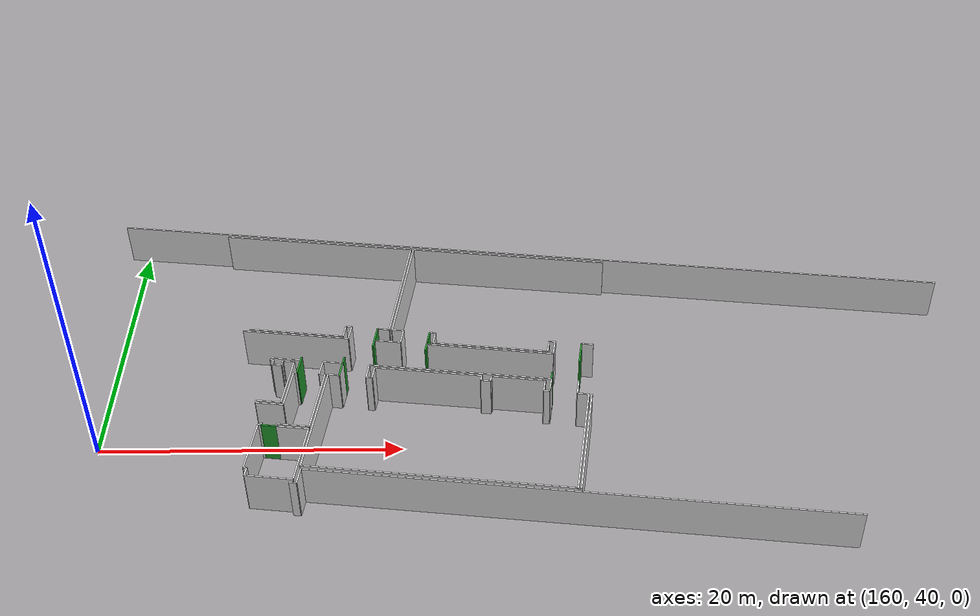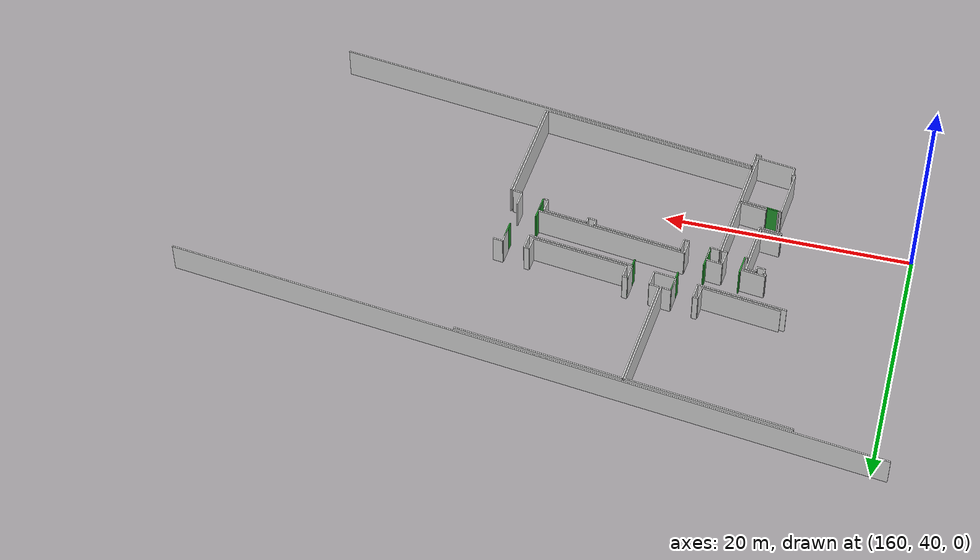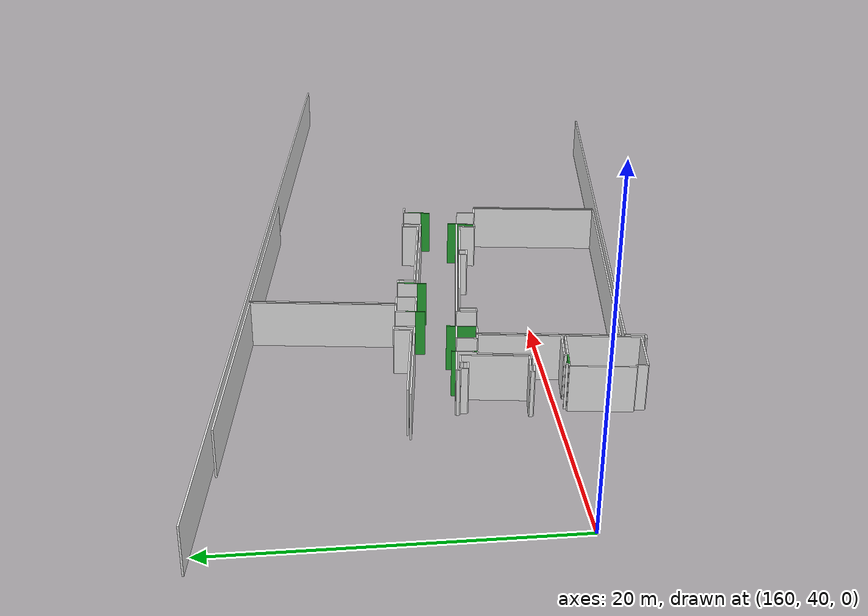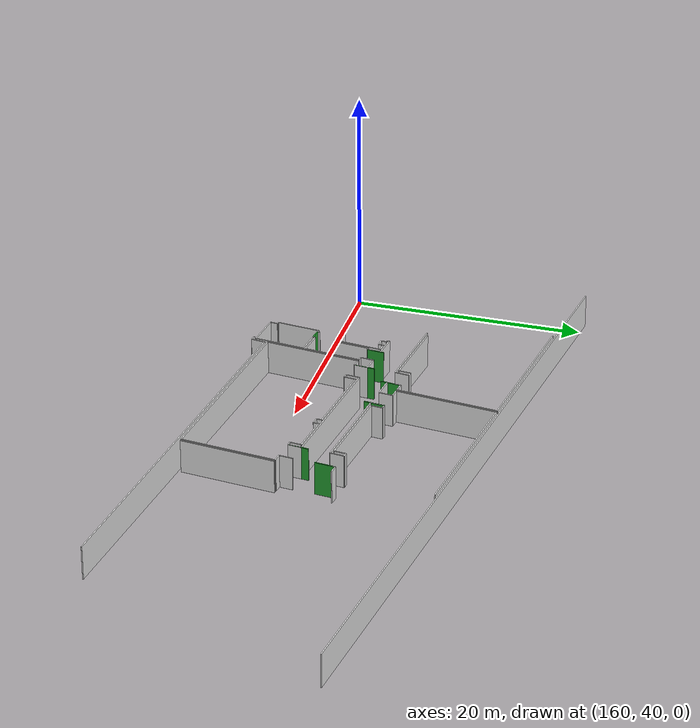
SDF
<sdf version="1.6">
 <world name="default">
  <model name="wall_191.8_46.1_1.5">
   <static>true</static>
   <pose>191.76500000001397 46.06499999994412 1.5 0 0 -1.6875809222415865</pose>
   <link name="link">
    <visual name="visual">
     <geometry><box><size>1.8022763384447233 0.1 3</size></box></geometry>
     <material>
      <script><uri>file://media/materials/scripts/gazebo.material</uri><name>Gazebo/Green</name></script>
     </material>
    </visual>
    <collision name="collision"><geometry><box><size>1.8022763384447233 0.1 3</size></box></geometry></collision>
   </link>
  </model>
  <model name="wall_181.4_47.3_1.5">
   <static>true</static>
   <pose>181.42000000015832 47.30500000016764 1.5 0 0 -1.693088050395822</pose>
   <link name="link">
    <visual name="visual">
     <geometry><box><size>1.8034688796923075 0.1 3</size></box></geometry>
     <material>
      <script><uri>file://media/materials/scripts/gazebo.material</uri><name>Gazebo/Green</name></script>
     </material>
    </visual>
    <collision name="collision"><geometry><box><size>1.8034688796923075 0.1 3</size></box></geometry></collision>
   </link>
  </model>
  <model name="wall_175.8_44.9_1.5">
   <static>true</static>
   <pose>175.80500000022585 44.86500000022352 1.5 0 0 1.4540117310915928</pose>
   <link name="link">
    <visual name="visual">
     <geometry><box><size>1.802276338498982 0.1 3</size></box></geometry>
     <material>
      <script><uri>file://media/materials/scripts/gazebo.material</uri><name>Gazebo/Green</name></script>
     </material>
    </visual>
    <collision name="collision"><geometry><box><size>1.802276338498982 0.1 3</size></box></geometry></collision>
   </link>
  </model>
  <model name="wall_189.7_43.2_1.5">
   <static>true</static>
   <pose>189.70999999984633 43.1999999997206 1.5 0 0 1.4491773036638287</pose>
   <link name="link">
    <visual name="visual">
     <geometry><box><size>1.8133946065913809 0.1 3</size></box></geometry>
     <material>
      <script><uri>file://media/materials/scripts/gazebo.material</uri><name>Gazebo/Green</name></script>
     </material>
    </visual>
    <collision name="collision"><geometry><box><size>1.8133946065913809 0.1 3</size></box></geometry></collision>
   </link>
  </model>
  <model name="wall_177.8_47.7_1.5">
   <static>true</static>
   <pose>177.8499999999185 47.734999999869615 1.5 0 0 -1.6930880506520969</pose>
   <link name="link">
    <visual name="visual">
     <geometry><box><size>1.803468879749112 0.1 3</size></box></geometry>
     <material>
      <script><uri>file://media/materials/scripts/gazebo.material</uri><name>Gazebo/Green</name></script>
     </material>
    </visual>
    <collision name="collision"><geometry><box><size>1.803468879749112 0.1 3</size></box></geometry></collision>
   </link>
  </model>
  <model name="wall_173.0_45.1_1.5">
   <static>true</static>
   <pose>172.96000000007916 45.05499999993481 1.5 0 0 1.4505735400033473</pose>
   <link name="link">
    <visual name="visual">
     <geometry><box><size>1.5008331017600727 0.1 3</size></box></geometry>
     <material>
      <script><uri>file://media/materials/scripts/gazebo.material</uri><name>Gazebo/Green</name></script>
     </material>
    </visual>
    <collision name="collision"><geometry><box><size>1.5008331017600727 0.1 3</size></box></geometry></collision>
   </link>
  </model>
  <model name="wall_171.6_39.3_1.5">
   <static>true</static>
   <pose>171.56500000000233 39.300000000046566 1.5 0 0 -0.12062366822892527</pose>
   <link name="link">
    <visual name="visual">
     <geometry><box><size>0.9972462082638486 0.1 3</size></box></geometry>
     <material>
      <script><uri>file://media/materials/scripts/gazebo.material</uri><name>Gazebo/Green</name></script>
     </material>
    </visual>
    <collision name="collision"><geometry><box><size>0.9972462082638486 0.1 3</size></box></geometry></collision>
   </link>
  </model>
  <model name="wall_192.3_46.9_1.5">
   <static>true</static>
   <pose>192.26999999998952 46.90999999991618 1.5 0 0 3.0172376589266166</pose>
   <link name="link">
    <visual name="visual">
     <geometry><box><size>0.806225774829855 0.1 3</size></box></geometry>
     <material>
      <script><uri>file://media/materials/scripts/gazebo.material</uri><name>Gazebo/White</name></script>
     </material>
    </visual>
    <collision name="collision"><geometry><box><size>0.806225774829855 0.1 3</size></box></geometry></collision>
   </link>
  </model>
  <model name="wall_189.9_47.2_1.5">
   <static>true</static>
   <pose>189.88000000000466 47.19500000006519 1.5 0 0 3.01723765836245</pose>
   <link name="link">
    <visual name="visual">
     <geometry><box><size>0.4031128874726857 0.1 3</size></box></geometry>
     <material>
      <script><uri>file://media/materials/scripts/gazebo.material</uri><name>Gazebo/White</name></script>
     </material>
    </visual>
    <collision name="collision"><geometry><box><size>0.4031128874726857 0.1 3</size></box></geometry></collision>
   </link>
  </model>
  <model name="wall_189.6_46.7_1.5">
   <static>true</static>
   <pose>189.6149999999907 46.71000000019558 1.5 0 0 -1.6975638618984608</pose>
   <link name="link">
    <visual name="visual">
     <geometry><box><size>1.028250942153329 0.1 3</size></box></geometry>
     <material>
      <script><uri>file://media/materials/scripts/gazebo.material</uri><name>Gazebo/White</name></script>
     </material>
    </visual>
    <collision name="collision"><geometry><box><size>1.028250942153329 0.1 3</size></box></geometry></collision>
   </link>
  </model>
  <model name="wall_185.7_46.7_1.5">
   <static>true</static>
   <pose>185.67999999999302 46.66500000003725 1.5 0 0 3.0220108925195217</pose>
   <link name="link">
    <visual name="visual">
     <geometry><box><size>7.79567187606697 0.1 3</size></box></geometry>
     <material>
      <script><uri>file://media/materials/scripts/gazebo.material</uri><name>Gazebo/White</name></script>
     </material>
    </visual>
    <collision name="collision"><geometry><box><size>7.79567187606697 0.1 3</size></box></geometry></collision>
   </link>
  </model>
  <model name="wall_181.9_47.6_1.5">
   <static>true</static>
   <pose>181.86999999999534 47.639999999897555 1.5 0 0 1.4536875822346544</pose>
   <link name="link">
    <visual name="visual">
     <geometry><box><size>1.0270345661353761 0.1 3</size></box></geometry>
     <material>
      <script><uri>file://media/materials/scripts/gazebo.material</uri><name>Gazebo/White</name></script>
     </material>
    </visual>
    <collision name="collision"><geometry><box><size>1.0270345661353761 0.1 3</size></box></geometry></collision>
   </link>
  </model>
  <model name="wall_181.7_48.2_1.5">
   <static>true</static>
   <pose>181.73000000001048 48.175000000046566 1.5 0 0 3.01723765834454</pose>
   <link name="link">
    <visual name="visual">
     <geometry><box><size>0.4031128874149275 0.1 3</size></box></geometry>
     <material>
      <script><uri>file://media/materials/scripts/gazebo.material</uri><name>Gazebo/White</name></script>
     </material>
    </visual>
    <collision name="collision"><geometry><box><size>0.4031128874149275 0.1 3</size></box></geometry></collision>
   </link>
  </model>
  <model name="wall_179.4_48.5_1.5">
   <static>true</static>
   <pose>179.35000000000582 48.46499999985099 1.5 0 0 3.026716048357006</pose>
   <link name="link">
    <visual name="visual">
     <geometry><box><size>0.7851751396509952 0.1 3</size></box></geometry>
     <material>
      <script><uri>file://media/materials/scripts/gazebo.material</uri><name>Gazebo/White</name></script>
     </material>
    </visual>
    <collision name="collision"><geometry><box><size>0.7851751396509952 0.1 3</size></box></geometry></collision>
   </link>
  </model>
  <model name="wall_179.5_52.9_1.5">
   <static>true</static>
   <pose>179.49500000002445 52.949999999953434 1.5 0 0 1.4508789678012857</pose>
   <link name="link">
    <visual name="visual">
     <geometry><box><size>8.944232779076149 0.1 3</size></box></geometry>
     <material>
      <script><uri>file://media/materials/scripts/gazebo.material</uri><name>Gazebo/White</name></script>
     </material>
    </visual>
    <collision name="collision"><geometry><box><size>8.944232779076149 0.1 3</size></box></geometry></collision>
   </link>
  </model>
  <model name="wall_186.9_56.6_1.5">
   <static>true</static>
   <pose>186.89000000001397 56.56000000005588 1.5 0 0 -0.12040599336592878</pose>
   <link name="link">
    <visual name="visual">
     <geometry><box><size>13.820057886989042 0.1 3</size></box></geometry>
     <material>
      <script><uri>file://media/materials/scripts/gazebo.material</uri><name>Gazebo/White</name></script>
     </material>
    </visual>
    <collision name="collision"><geometry><box><size>13.820057886989042 0.1 3</size></box></geometry></collision>
   </link>
  </model>
  <model name="wall_191.5_42.7_1.5">
   <static>true</static>
   <pose>191.47000000000116 42.675000000046566 1.5 0 0 -1.6879050713305428</pose>
   <link name="link">
    <visual name="visual">
     <geometry><box><size>1.1982069937429929 0.1 3</size></box></geometry>
     <material>
      <script><uri>file://media/materials/scripts/gazebo.material</uri><name>Gazebo/White</name></script>
     </material>
    </visual>
    <collision name="collision"><geometry><box><size>1.1982069937429929 0.1 3</size></box></geometry></collision>
   </link>
  </model>
  <model name="wall_189.7_42.9_1.5">
   <static>true</static>
   <pose>189.67499999998836 42.89500000001863 1.5 0 0 1.445407206476848</pose>
   <link name="link">
    <visual name="visual">
     <geometry><box><size>1.199416525224772 0.1 3</size></box></geometry>
     <material>
      <script><uri>file://media/materials/scripts/gazebo.material</uri><name>Gazebo/White</name></script>
     </material>
    </visual>
    <collision name="collision"><geometry><box><size>1.199416525224772 0.1 3</size></box></geometry></collision>
   </link>
  </model>
  <model name="wall_183.7_44.2_1.5">
   <static>true</static>
   <pose>183.69000000000233 44.22000000020489 1.5 0 0 3.021708265311705</pose>
   <link name="link">
    <visual name="visual">
     <geometry><box><size>12.207620570765556 0.1 3</size></box></geometry>
     <material>
      <script><uri>file://media/materials/scripts/gazebo.material</uri><name>Gazebo/White</name></script>
     </material>
    </visual>
    <collision name="collision"><geometry><box><size>12.207620570765556 0.1 3</size></box></geometry></collision>
   </link>
  </model>
  <model name="wall_177.6_44.4_1.5">
   <static>true</static>
   <pose>177.55999999999767 44.35499999998137 1.5 0 0 -1.6879050713333807</pose>
   <link name="link">
    <visual name="visual">
     <geometry><box><size>1.1982069942122657 0.1 3</size></box></geometry>
     <material>
      <script><uri>file://media/materials/scripts/gazebo.material</uri><name>Gazebo/White</name></script>
     </material>
    </visual>
    <collision name="collision"><geometry><box><size>1.1982069942122657 0.1 3</size></box></geometry></collision>
   </link>
  </model>
  <model name="wall_175.8_44.6_1.5">
   <static>true</static>
   <pose>175.77499999999418 44.56500000017695 1.5 0 0 1.4454072064764434</pose>
   <link name="link">
    <visual name="visual">
     <geometry><box><size>1.199416524755487 0.1 3</size></box></geometry>
     <material>
      <script><uri>file://media/materials/scripts/gazebo.material</uri><name>Gazebo/White</name></script>
     </material>
    </visual>
    <collision name="collision"><geometry><box><size>1.199416524755487 0.1 3</size></box></geometry></collision>
   </link>
  </model>
  <model name="wall_175.2_45.2_1.5">
   <static>true</static>
   <pose>175.17999999999302 45.23999999999069 1.5 0 0 3.0227523092521484</pose>
   <link name="link">
    <visual name="visual">
     <geometry><box><size>1.3495184325570784 0.1 3</size></box></geometry>
     <material>
      <script><uri>file://media/materials/scripts/gazebo.material</uri><name>Gazebo/White</name></script>
     </material>
    </visual>
    <collision name="collision"><geometry><box><size>1.3495184325570784 0.1 3</size></box></geometry></collision>
   </link>
  </model>
  <model name="wall_174.4_44.7_1.5">
   <static>true</static>
   <pose>174.43499999999767 44.7249999998603 1.5 0 0 -1.696185447161499</pose>
   <link name="link">
    <visual name="visual">
     <geometry><box><size>1.1994165247627664 0.1 3</size></box></geometry>
     <material>
      <script><uri>file://media/materials/scripts/gazebo.material</uri><name>Gazebo/White</name></script>
     </material>
    </visual>
    <collision name="collision"><geometry><box><size>1.1994165247627664 0.1 3</size></box></geometry></collision>
   </link>
  </model>
  <model name="wall_172.9_44.9_1.5">
   <static>true</static>
   <pose>172.94000000000233 44.90500000002794 1.5 0 0 1.4536875822110042</pose>
   <link name="link">
    <visual name="visual">
     <geometry><box><size>1.198206993749794 0.1 3</size></box></geometry>
     <material>
      <script><uri>file://media/materials/scripts/gazebo.material</uri><name>Gazebo/White</name></script>
     </material>
    </visual>
    <collision name="collision"><geometry><box><size>1.198206993749794 0.1 3</size></box></geometry></collision>
   </link>
  </model>
  <model name="wall_172.0_45.6_1.5">
   <static>true</static>
   <pose>172.0100000000093 45.62000000011176 1.5 0 0 3.0221637274612827</pose>
   <link name="link">
    <visual name="visual">
     <geometry><box><size>2.0143485299488986 0.1 3</size></box></geometry>
     <material>
      <script><uri>file://media/materials/scripts/gazebo.material</uri><name>Gazebo/White</name></script>
     </material>
    </visual>
    <collision name="collision"><geometry><box><size>2.0143485299488986 0.1 3</size></box></geometry></collision>
   </link>
  </model>
  <model name="wall_171.0_45.6_1.5">
   <static>true</static>
   <pose>170.99499999999534 45.64500000001863 1.5 0 0 -1.7273982035881303</pose>
   <link name="link">
    <visual name="visual">
     <geometry><box><size>0.1923538410258384 0.1 3</size></box></geometry>
     <material>
      <script><uri>file://media/materials/scripts/gazebo.material</uri><name>Gazebo/White</name></script>
     </material>
    </visual>
    <collision name="collision"><geometry><box><size>0.1923538410258384 0.1 3</size></box></geometry></collision>
   </link>
  </model>
  <model name="wall_172.4_48.1_1.5">
   <static>true</static>
   <pose>172.40499999999884 48.074999999953434 1.5 0 0 -0.11975615108864926</pose>
   <link name="link">
    <visual name="visual">
     <geometry><box><size>7.2821562740685915 0.1 3</size></box></geometry>
     <material>
      <script><uri>file://media/materials/scripts/gazebo.material</uri><name>Gazebo/White</name></script>
     </material>
    </visual>
    <collision name="collision"><geometry><box><size>7.2821562740685915 0.1 3</size></box></geometry></collision>
   </link>
  </model>
  <model name="wall_176.1_48.2_1.5">
   <static>true</static>
   <pose>176.09500000000116 48.24500000011176 1.5 0 0 1.4474586259198403</pose>
   <link name="link">
    <visual name="visual">
     <geometry><box><size>1.2192620718694447 0.1 3</size></box></geometry>
     <material>
      <script><uri>file://media/materials/scripts/gazebo.material</uri><name>Gazebo/White</name></script>
     </material>
    </visual>
    <collision name="collision"><geometry><box><size>1.2192620718694447 0.1 3</size></box></geometry></collision>
   </link>
  </model>
  <model name="wall_177.9_48.0_1.5">
   <static>true</static>
   <pose>177.8850000000093 48.02499999990687 1.5 0 0 -1.6941340277173305</pose>
   <link name="link">
    <visual name="visual">
     <geometry><box><size>1.2192620718766056 0.1 3</size></box></geometry>
     <material>
      <script><uri>file://media/materials/scripts/gazebo.material</uri><name>Gazebo/White</name></script>
     </material>
    </visual>
    <collision name="collision"><geometry><box><size>1.2192620718766056 0.1 3</size></box></geometry></collision>
   </link>
  </model>
  <model name="wall_178.7_47.3_1.5">
   <static>true</static>
   <pose>178.70000000001164 47.31499999994412 1.5 0 0 -0.11743468977405322</pose>
   <link name="link">
    <visual name="visual">
     <geometry><box><size>1.7923448329168745 0.1 3</size></box></geometry>
     <material>
      <script><uri>file://media/materials/scripts/gazebo.material</uri><name>Gazebo/White</name></script>
     </material>
    </visual>
    <collision name="collision"><geometry><box><size>1.7923448329168745 0.1 3</size></box></geometry></collision>
   </link>
  </model>
  <model name="wall_179.7_47.8_1.5">
   <static>true</static>
   <pose>179.66500000000815 47.81499999994412 1.5 0 0 1.4474586259198403</pose>
   <link name="link">
    <visual name="visual">
     <geometry><box><size>1.2192620718694447 0.1 3</size></box></geometry>
     <material>
      <script><uri>file://media/materials/scripts/gazebo.material</uri><name>Gazebo/White</name></script>
     </material>
    </visual>
    <collision name="collision"><geometry><box><size>1.2192620718694447 0.1 3</size></box></geometry></collision>
   </link>
  </model>
  <model name="wall_181.5_47.6_1.5">
   <static>true</static>
   <pose>181.4550000000163 47.59500000020489 1.5 0 0 -1.6941340277173305</pose>
   <link name="link">
    <visual name="visual">
     <geometry><box><size>1.2192620718766056 0.1 3</size></box></geometry>
     <material>
      <script><uri>file://media/materials/scripts/gazebo.material</uri><name>Gazebo/White</name></script>
     </material>
    </visual>
    <collision name="collision"><geometry><box><size>1.2192620718766056 0.1 3</size></box></geometry></collision>
   </link>
  </model>
  <model name="wall_185.7_46.5_1.5">
   <static>true</static>
   <pose>185.65499999999884 46.47500000009313 1.5 0 0 -0.11989009554178759</pose>
   <link name="link">
    <visual name="visual">
     <geometry><box><size>8.611817462088831 0.1 3</size></box></geometry>
     <material>
      <script><uri>file://media/materials/scripts/gazebo.material</uri><name>Gazebo/White</name></script>
     </material>
    </visual>
    <collision name="collision"><geometry><box><size>8.611817462088831 0.1 3</size></box></geometry></collision>
   </link>
  </model>
  <model name="wall_190.0_46.6_1.5">
   <static>true</static>
   <pose>190.00500000000466 46.56499999994412 1.5 0 0 1.4474586258724629</pose>
   <link name="link">
    <visual name="visual">
     <geometry><box><size>1.2192620718766056 0.1 3</size></box></geometry>
     <material>
      <script><uri>file://media/materials/scripts/gazebo.material</uri><name>Gazebo/White</name></script>
     </material>
    </visual>
    <collision name="collision"><geometry><box><size>1.2192620718766056 0.1 3</size></box></geometry></collision>
   </link>
  </model>
  <model name="wall_191.8_46.4_1.5">
   <static>true</static>
   <pose>191.7949999999837 46.35499999998137 1.5 0 0 -1.6941340277173305</pose>
   <link name="link">
    <visual name="visual">
     <geometry><box><size>1.2192620718766056 0.1 3</size></box></geometry>
     <material>
      <script><uri>file://media/materials/scripts/gazebo.material</uri><name>Gazebo/White</name></script>
     </material>
    </visual>
    <collision name="collision"><geometry><box><size>1.2192620718766056 0.1 3</size></box></geometry></collision>
   </link>
  </model>
  <model name="wall_172.2_45.4_1.5">
   <static>true</static>
   <pose>172.21000000002095 45.39500000001863 1.5 0 0 -0.11787210300242888</pose>
   <link name="link">
    <visual name="visual">
     <geometry><box><size>0.7653103945376242 0.1 3</size></box></geometry>
     <material>
      <script><uri>file://media/materials/scripts/gazebo.material</uri><name>Gazebo/White</name></script>
     </material>
    </visual>
    <collision name="collision"><geometry><box><size>0.7653103945376242 0.1 3</size></box></geometry></collision>
   </link>
  </model>
  <model name="wall_172.4_43.4_1.5">
   <static>true</static>
   <pose>172.35500000001048 43.39500000001863 1.5 0 0 -1.69042694704516</pose>
   <link name="link">
    <visual name="visual">
     <geometry><box><size>3.938146772429098 0.1 3</size></box></geometry>
     <material>
      <script><uri>file://media/materials/scripts/gazebo.material</uri><name>Gazebo/White</name></script>
     </material>
    </visual>
    <collision name="collision"><geometry><box><size>3.938146772429098 0.1 3</size></box></geometry></collision>
   </link>
  </model>
  <model name="wall_171.3_41.5_1.5">
   <static>true</static>
   <pose>171.31500000000233 41.53499999991618 1.5 0 0 3.024123548711388</pose>
   <link name="link">
    <visual name="visual">
     <geometry><box><size>1.6211724152395952 0.1 3</size></box></geometry>
     <material>
      <script><uri>file://media/materials/scripts/gazebo.material</uri><name>Gazebo/White</name></script>
     </material>
    </visual>
    <collision name="collision"><geometry><box><size>1.6211724152395952 0.1 3</size></box></geometry></collision>
   </link>
  </model>
  <model name="wall_171.1_45.5_1.5">
   <static>true</static>
   <pose>171.0799999999872 45.53499999991618 1.5 0 0 -0.14888994659904642</pose>
   <link name="link">
    <visual name="visual">
     <geometry><box><size>0.20223748414268597 0.1 3</size></box></geometry>
     <material>
      <script><uri>file://media/materials/scripts/gazebo.material</uri><name>Gazebo/White</name></script>
     </material>
    </visual>
    <collision name="collision"><geometry><box><size>0.20223748414268597 0.1 3</size></box></geometry></collision>
   </link>
  </model>
  <model name="wall_171.2_45.3_1.5">
   <static>true</static>
   <pose>171.15499999999884 45.300000000046566 1.5 0 0 -1.6839473083735081</pose>
   <link name="link">
    <visual name="visual">
     <geometry><box><size>0.4428317964528541 0.1 3</size></box></geometry>
     <material>
      <script><uri>file://media/materials/scripts/gazebo.material</uri><name>Gazebo/White</name></script>
     </material>
    </visual>
    <collision name="collision"><geometry><box><size>0.4428317964528541 0.1 3</size></box></geometry></collision>
   </link>
  </model>
  <model name="wall_171.5_45.0_1.5">
   <static>true</static>
   <pose>171.45000000001164 45.04000000003725 1.5 0 0 -0.12435499465869924</pose>
   <link name="link">
    <visual name="visual">
     <geometry><box><size>0.6449806198869872 0.1 3</size></box></geometry>
     <material>
      <script><uri>file://media/materials/scripts/gazebo.material</uri><name>Gazebo/White</name></script>
     </material>
    </visual>
    <collision name="collision"><geometry><box><size>0.6449806198869872 0.1 3</size></box></geometry></collision>
   </link>
  </model>
  <model name="wall_171.8_45.1_1.5">
   <static>true</static>
   <pose>171.7850000000035 45.125 1.5 0 0 1.4513674008959114</pose>
   <link name="link">
    <visual name="visual">
     <geometry><box><size>0.25179356623667715 0.1 3</size></box></geometry>
     <material>
      <script><uri>file://media/materials/scripts/gazebo.material</uri><name>Gazebo/White</name></script>
     </material>
    </visual>
    <collision name="collision"><geometry><box><size>0.25179356623667715 0.1 3</size></box></geometry></collision>
   </link>
  </model>
  <model name="wall_171.8_45.3_1.5">
   <static>true</static>
   <pose>171.81500000000233 45.34499999997206 1.5 0 0 1.4141944496240997</pose>
   <link name="link">
    <visual name="visual">
     <geometry><box><size>0.19235384056587543 0.1 3</size></box></geometry>
     <material>
      <script><uri>file://media/materials/scripts/gazebo.material</uri><name>Gazebo/White</name></script>
     </material>
    </visual>
    <collision name="collision"><geometry><box><size>0.19235384056587543 0.1 3</size></box></geometry></collision>
   </link>
  </model>
  <model name="wall_178.4_48.6_1.5">
   <static>true</static>
   <pose>178.36000000001513 48.579999999841675 1.5 0 0 3.0172376589266166</pose>
   <link name="link">
    <visual name="visual">
     <geometry><box><size>0.806225774829855 0.1 3</size></box></geometry>
     <material>
      <script><uri>file://media/materials/scripts/gazebo.material</uri><name>Gazebo/White</name></script>
     </material>
    </visual>
    <collision name="collision"><geometry><box><size>0.806225774829855 0.1 3</size></box></geometry></collision>
   </link>
  </model>
  <model name="wall_176.0_48.9_1.5">
   <static>true</static>
   <pose>175.97000000000116 48.87000000011176 1.5 0 0 3.0419240009977764</pose>
   <link name="link">
    <visual name="visual">
     <geometry><box><size>0.4019950248137912 0.1 3</size></box></geometry>
     <material>
      <script><uri>file://media/materials/scripts/gazebo.material</uri><name>Gazebo/White</name></script>
     </material>
    </visual>
    <collision name="collision"><geometry><box><size>0.4019950248137912 0.1 3</size></box></geometry></collision>
   </link>
  </model>
  <model name="wall_175.7_48.4_1.5">
   <static>true</static>
   <pose>175.71000000002095 48.38000000012107 1.5 0 0 -1.687905071355139</pose>
   <link name="link">
    <visual name="visual">
     <geometry><box><size>1.0270345661353761 0.1 3</size></box></geometry>
     <material>
      <script><uri>file://media/materials/scripts/gazebo.material</uri><name>Gazebo/White</name></script>
     </material>
    </visual>
    <collision name="collision"><geometry><box><size>1.0270345661353761 0.1 3</size></box></geometry></collision>
   </link>
  </model>
  <model name="wall_172.4_48.3_1.5">
   <static>true</static>
   <pose>172.43499999999767 48.26000000000931 1.5 0 0 3.0208760957199403</pose>
   <link name="link">
    <visual name="visual">
     <geometry><box><size>6.4771367131116735 0.1 3</size></box></geometry>
     <material>
      <script><uri>file://media/materials/scripts/gazebo.material</uri><name>Gazebo/White</name></script>
     </material>
    </visual>
    <collision name="collision"><geometry><box><size>6.4771367131116735 0.1 3</size></box></geometry></collision>
   </link>
  </model>
  <model name="wall_173.1_58.2_1.5">
   <static>true</static>
   <pose>173.09500000000116 58.21999999997206 1.5 0 0 -0.11951661708533105</pose>
   <link name="link">
    <visual name="visual">
     <geometry><box><size>13.586923860836658 0.1 3</size></box></geometry>
     <material>
      <script><uri>file://media/materials/scripts/gazebo.material</uri><name>Gazebo/White</name></script>
     </material>
    </visual>
    <collision name="collision"><geometry><box><size>13.586923860836658 0.1 3</size></box></geometry></collision>
   </link>
  </model>
  <model name="wall_179.3_53.0_1.5">
   <static>true</static>
   <pose>179.30000000001746 52.96999999997206 1.5 0 0 -1.6918235466011338</pose>
   <link name="link">
    <visual name="visual">
     <geometry><box><size>8.945434590131466 0.1 3</size></box></geometry>
     <material>
      <script><uri>file://media/materials/scripts/gazebo.material</uri><name>Gazebo/White</name></script>
     </material>
    </visual>
    <collision name="collision"><geometry><box><size>8.945434590131466 0.1 3</size></box></geometry></collision>
   </link>
  </model>
  <model name="wall_185.4_43.4_1.5">
   <static>true</static>
   <pose>185.40499999999884 43.359999999869615 1.5 0 0 3.0191315960530236</pose>
   <link name="link">
    <visual name="visual">
     <geometry><box><size>0.6549045731757559 0.1 3</size></box></geometry>
     <material>
      <script><uri>file://media/materials/scripts/gazebo.material</uri><name>Gazebo/White</name></script>
     </material>
    </visual>
    <collision name="collision"><geometry><box><size>0.6549045731757559 0.1 3</size></box></geometry></collision>
   </link>
  </model>
  <model name="wall_185.1_43.6_1.5">
   <static>true</static>
   <pose>185.11000000001513 43.625 1.5 0 0 1.4382447945575316</pose>
   <link name="link">
    <visual name="visual">
     <geometry><box><size>0.45398237869696956 0.1 3</size></box></geometry>
     <material>
      <script><uri>file://media/materials/scripts/gazebo.material</uri><name>Gazebo/White</name></script>
     </material>
    </visual>
    <collision name="collision"><geometry><box><size>0.45398237869696956 0.1 3</size></box></geometry></collision>
   </link>
  </model>
  <model name="wall_181.6_44.3_1.5">
   <static>true</static>
   <pose>181.57500000001164 44.2750000001397 1.5 0 0 3.0229380636870755</pose>
   <link name="link">
    <visual name="visual">
     <geometry><box><size>7.180487448650316 0.1 3</size></box></geometry>
     <material>
      <script><uri>file://media/materials/scripts/gazebo.material</uri><name>Gazebo/White</name></script>
     </material>
    </visual>
    <collision name="collision"><geometry><box><size>7.180487448650316 0.1 3</size></box></geometry></collision>
   </link>
  </model>
  <model name="wall_178.0_44.2_1.5">
   <static>true</static>
   <pose>177.95000000001164 44.205000000074506 1.5 0 0 -1.6914199953433933</pose>
   <link name="link">
    <visual name="visual">
     <geometry><box><size>0.9972462085370126 0.1 3</size></box></geometry>
     <material>
      <script><uri>file://media/materials/scripts/gazebo.material</uri><name>Gazebo/White</name></script>
     </material>
    </visual>
    <collision name="collision"><geometry><box><size>0.9972462085370126 0.1 3</size></box></geometry></collision>
   </link>
  </model>
  <model name="wall_177.7_43.7_1.5">
   <static>true</static>
   <pose>177.69000000000233 43.734999999869615 1.5 0 0 3.017237659508693</pose>
   <link name="link">
    <visual name="visual">
     <geometry><box><size>0.4031128874149275 0.1 3</size></box></geometry>
     <material>
      <script><uri>file://media/materials/scripts/gazebo.material</uri><name>Gazebo/White</name></script>
     </material>
    </visual>
    <collision name="collision"><geometry><box><size>0.4031128874149275 0.1 3</size></box></geometry></collision>
   </link>
  </model>
  <model name="wall_175.3_44.0_1.5">
   <static>true</static>
   <pose>175.3300000000163 44.015000000130385 1.5 0 0 3.0205654339775116</pose>
   <link name="link">
    <visual name="visual">
     <geometry><box><size>0.7454528824542799 0.1 3</size></box></geometry>
     <material>
      <script><uri>file://media/materials/scripts/gazebo.material</uri><name>Gazebo/White</name></script>
     </material>
    </visual>
    <collision name="collision"><geometry><box><size>0.7454528824542799 0.1 3</size></box></geometry></collision>
   </link>
  </model>
  <model name="wall_174.5_39.9_1.5">
   <static>true</static>
   <pose>174.4550000000163 39.90500000002794 1.5 0 0 -1.6917434222515764</pose>
   <link name="link">
    <visual name="visual">
     <geometry><box><size>8.371152847783126 0.1 3</size></box></geometry>
     <material>
      <script><uri>file://media/materials/scripts/gazebo.material</uri><name>Gazebo/White</name></script>
     </material>
    </visual>
    <collision name="collision"><geometry><box><size>8.371152847783126 0.1 3</size></box></geometry></collision>
   </link>
  </model>
  <model name="wall_182.5_34.7_1.5">
   <static>true</static>
   <pose>182.5450000000128 34.71500000008382 1.5 0 0 -0.11984180790102025</pose>
   <link name="link">
    <visual name="visual">
     <geometry><box><size>17.31418493603976 0.1 3</size></box></geometry>
     <material>
      <script><uri>file://media/materials/scripts/gazebo.material</uri><name>Gazebo/White</name></script>
     </material>
    </visual>
    <collision name="collision"><geometry><box><size>17.31418493603976 0.1 3</size></box></geometry></collision>
   </link>
  </model>
  <model name="wall_191.6_37.8_1.5">
   <static>true</static>
   <pose>191.64500000001863 37.83500000019558 1.5 0 0 1.449849231338217</pose>
   <link name="link">
    <visual name="visual">
     <geometry><box><size>8.371152847783126 0.1 3</size></box></geometry>
     <material>
      <script><uri>file://media/materials/scripts/gazebo.material</uri><name>Gazebo/White</name></script>
     </material>
    </visual>
    <collision name="collision"><geometry><box><size>8.371152847783126 0.1 3</size></box></geometry></collision>
   </link>
  </model>
  <model name="wall_191.8_42.0_1.5">
   <static>true</static>
   <pose>191.77500000002328 42.03500000014901 1.5 0 0 3.0221637277673166</pose>
   <link name="link">
    <visual name="visual">
     <geometry><box><size>0.7553806987030962 0.1 3</size></box></geometry>
     <material>
      <script><uri>file://media/materials/scripts/gazebo.material</uri><name>Gazebo/White</name></script>
     </material>
    </visual>
    <collision name="collision"><geometry><box><size>0.7553806987030962 0.1 3</size></box></geometry></collision>
   </link>
  </model>
  <model name="wall_189.4_42.3_1.5">
   <static>true</static>
   <pose>189.40499999999884 42.31999999983236 1.5 0 0 3.039385935376501</pose>
   <link name="link">
    <visual name="visual">
     <geometry><box><size>0.3920459156380471 0.1 3</size></box></geometry>
     <material>
      <script><uri>file://media/materials/scripts/gazebo.material</uri><name>Gazebo/White</name></script>
     </material>
    </visual>
    <collision name="collision"><geometry><box><size>0.3920459156380471 0.1 3</size></box></geometry></collision>
   </link>
  </model>
  <model name="wall_189.3_42.8_1.5">
   <static>true</static>
   <pose>189.27000000001863 42.83999999985099 1.5 0 0 1.4513674007811488</pose>
   <link name="link">
    <visual name="visual">
     <geometry><box><size>1.0071742649605788 0.1 3</size></box></geometry>
     <material>
      <script><uri>file://media/materials/scripts/gazebo.material</uri><name>Gazebo/White</name></script>
     </material>
    </visual>
    <collision name="collision"><geometry><box><size>1.0071742649605788 0.1 3</size></box></geometry></collision>
   </link>
  </model>
  <model name="wall_187.6_43.6_1.5">
   <static>true</static>
   <pose>187.55500000002212 43.55499999993481 1.5 0 0 3.02105311047783</pose>
   <link name="link">
    <visual name="visual">
     <geometry><box><size>3.5759474269152105 0.1 3</size></box></geometry>
     <material>
      <script><uri>file://media/materials/scripts/gazebo.material</uri><name>Gazebo/White</name></script>
     </material>
    </visual>
    <collision name="collision"><geometry><box><size>3.5759474269152105 0.1 3</size></box></geometry></collision>
   </link>
  </model>
  <model name="wall_185.8_43.5_1.5">
   <static>true</static>
   <pose>185.75500000000466 43.544999999925494 1.5 0 0 -1.6814535480255803</pose>
   <link name="link">
    <visual name="visual">
     <geometry><box><size>0.45276925709713844 0.1 3</size></box></geometry>
     <material>
      <script><uri>file://media/materials/scripts/gazebo.material</uri><name>Gazebo/White</name></script>
     </material>
    </visual>
    <collision name="collision"><geometry><box><size>0.45276925709713844 0.1 3</size></box></geometry></collision>
   </link>
  </model>
  <model name="wall_191.8_37.8_1.5">
   <static>true</static>
   <pose>191.84500000000116 37.81500000017695 1.5 0 0 1.4498492313451194</pose>
   <link name="link">
    <visual name="visual">
     <geometry><box><size>8.371152847776102 0.1 3</size></box></geometry>
     <material>
      <script><uri>file://media/materials/scripts/gazebo.material</uri><name>Gazebo/White</name></script>
     </material>
    </visual>
    <collision name="collision"><geometry><box><size>8.371152847776102 0.1 3</size></box></geometry></collision>
   </link>
  </model>
  <model name="wall_171.0_39.4_1.5">
   <static>true</static>
   <pose>170.97000000000116 39.36999999987893 1.5 0 0 -0.09966865257760905</pose>
   <link name="link">
    <visual name="visual">
     <geometry><box><size>0.20099751243585498 0.1 3</size></box></geometry>
     <material>
      <script><uri>file://media/materials/scripts/gazebo.material</uri><name>Gazebo/White</name></script>
     </material>
    </visual>
    <collision name="collision"><geometry><box><size>0.20099751243585498 0.1 3</size></box></geometry></collision>
   </link>
  </model>
  <model name="wall_173.1_39.1_1.5">
   <static>true</static>
   <pose>173.10500000001048 39.11500000022352 1.5 0 0 -0.11905156754423915</pose>
   <link name="link">
    <visual name="visual">
     <geometry><box><size>2.1048990474859015 0.1 3</size></box></geometry>
     <material>
      <script><uri>file://media/materials/scripts/gazebo.material</uri><name>Gazebo/White</name></script>
     </material>
    </visual>
    <collision name="collision"><geometry><box><size>2.1048990474859015 0.1 3</size></box></geometry></collision>
   </link>
  </model>
  <model name="wall_173.9_36.8_1.5">
   <static>true</static>
   <pose>173.88000000000466 36.79000000003725 1.5 0 0 -1.6929129367177644</pose>
   <link name="link">
    <visual name="visual">
     <geometry><box><size>4.43301252009494 0.1 3</size></box></geometry>
     <material>
      <script><uri>file://media/materials/scripts/gazebo.material</uri><name>Gazebo/White</name></script>
     </material>
    </visual>
    <collision name="collision"><geometry><box><size>4.43301252009494 0.1 3</size></box></geometry></collision>
   </link>
  </model>
  <model name="wall_172.1_34.8_1.5">
   <static>true</static>
   <pose>172.08499999999185 34.77499999990687 1.5 0 0 3.020871070550642</pose>
   <link name="link">
    <visual name="visual">
     <geometry><box><size>3.0723606559145504 0.1 3</size></box></geometry>
     <material>
      <script><uri>file://media/materials/scripts/gazebo.material</uri><name>Gazebo/White</name></script>
     </material>
    </visual>
    <collision name="collision"><geometry><box><size>3.0723606559145504 0.1 3</size></box></geometry></collision>
   </link>
  </model>
  <model name="wall_170.6_35.3_1.5">
   <static>true</static>
   <pose>170.60000000000582 35.28000000002794 1.5 0 0 1.446441332248135</pose>
   <link name="link">
    <visual name="visual">
     <geometry><box><size>0.6449806199952839 0.1 3</size></box></geometry>
     <material>
      <script><uri>file://media/materials/scripts/gazebo.material</uri><name>Gazebo/White</name></script>
     </material>
    </visual>
    <collision name="collision"><geometry><box><size>0.6449806199952839 0.1 3</size></box></geometry></collision>
   </link>
  </model>
  <model name="wall_170.5_35.6_1.5">
   <static>true</static>
   <pose>170.52999999999884 35.61499999999069 1.5 0 0 3.006064940537032</pose>
   <link name="link">
    <visual name="visual">
     <geometry><box><size>0.22203603311405212 0.1 3</size></box></geometry>
     <material>
      <script><uri>file://media/materials/scripts/gazebo.material</uri><name>Gazebo/White</name></script>
     </material>
    </visual>
    <collision name="collision"><geometry><box><size>0.22203603311405212 0.1 3</size></box></geometry></collision>
   </link>
  </model>
  <model name="wall_170.6_37.5_1.5">
   <static>true</static>
   <pose>170.64499999998952 37.50499999988824 1.5 0 0 1.4513674007734978</pose>
   <link name="link">
    <visual name="visual">
     <geometry><box><size>3.7769034936056385 0.1 3</size></box></geometry>
     <material>
      <script><uri>file://media/materials/scripts/gazebo.material</uri><name>Gazebo/White</name></script>
     </material>
    </visual>
    <collision name="collision"><geometry><box><size>3.7769034936056385 0.1 3</size></box></geometry></collision>
   </link>
  </model>
  <model name="wall_170.5_41.5_1.5">
   <static>true</static>
   <pose>170.49499999999534 41.53000000002794 1.5 0 0 -1.7196862747459547</pose>
   <link name="link">
    <visual name="visual">
     <geometry><box><size>0.2022374838894058 0.1 3</size></box></geometry>
     <material>
      <script><uri>file://media/materials/scripts/gazebo.material</uri><name>Gazebo/White</name></script>
     </material>
    </visual>
    <collision name="collision"><geometry><box><size>0.2022374838894058 0.1 3</size></box></geometry></collision>
   </link>
  </model>
  <model name="wall_171.4_41.3_1.5">
   <static>true</static>
   <pose>171.3849999999802 41.32000000006519 1.5 0 0 -0.1209536472312257</pose>
   <link name="link">
    <visual name="visual">
     <geometry><box><size>1.823321145624578 0.1 3</size></box></geometry>
     <material>
      <script><uri>file://media/materials/scripts/gazebo.material</uri><name>Gazebo/White</name></script>
     </material>
    </visual>
    <collision name="collision"><geometry><box><size>1.823321145624578 0.1 3</size></box></geometry></collision>
   </link>
  </model>
  <model name="wall_172.5_42.8_1.5">
   <static>true</static>
   <pose>172.47999999998137 42.77000000001863 1.5 0 0 1.4495983856926966</pose>
   <link name="link">
    <visual name="visual">
     <geometry><box><size>3.1430558379864832 0.1 3</size></box></geometry>
     <material>
      <script><uri>file://media/materials/scripts/gazebo.material</uri><name>Gazebo/White</name></script>
     </material>
    </visual>
    <collision name="collision"><geometry><box><size>3.1430558379864832 0.1 3</size></box></geometry></collision>
   </link>
  </model>
  <model name="wall_172.8_44.3_1.5">
   <static>true</static>
   <pose>172.76999999998952 44.32000000006519 1.5 0 0 -0.09966865257760905</pose>
   <link name="link">
    <visual name="visual">
     <geometry><box><size>0.20099751243585498 0.1 3</size></box></geometry>
     <material>
      <script><uri>file://media/materials/scripts/gazebo.material</uri><name>Gazebo/White</name></script>
     </material>
    </visual>
    <collision name="collision"><geometry><box><size>0.20099751243585498 0.1 3</size></box></geometry></collision>
   </link>
  </model>
  <model name="wall_174.6_44.1_1.5">
   <static>true</static>
   <pose>174.55999999999767 44.10499999998137 1.5 0 0 -0.12435499408110015</pose>
   <link name="link">
    <visual name="visual">
     <geometry><box><size>0.4031128874149275 0.1 3</size></box></geometry>
     <material>
      <script><uri>file://media/materials/scripts/gazebo.material</uri><name>Gazebo/White</name></script>
     </material>
    </visual>
    <collision name="collision"><geometry><box><size>0.4031128874149275 0.1 3</size></box></geometry></collision>
   </link>
  </model>
  <model name="wall_174.5_41.6_1.5">
   <static>true</static>
   <pose>174.4649999999965 41.63500000000931 1.5 0 0 -1.690870309974588</pose>
   <link name="link">
    <visual name="visual">
     <geometry><box><size>4.925464445238173 0.1 3</size></box></geometry>
     <material>
      <script><uri>file://media/materials/scripts/gazebo.material</uri><name>Gazebo/White</name></script>
     </material>
    </visual>
    <collision name="collision"><geometry><box><size>4.925464445238173 0.1 3</size></box></geometry></collision>
   </link>
  </model>
  <model name="wall_173.1_39.3_1.5">
   <static>true</static>
   <pose>173.125 39.31499999994412 1.5 0 0 3.0225410860422697</pose>
   <link name="link">
    <visual name="visual">
     <geometry><box><size>2.104899047428106 0.1 3</size></box></geometry>
     <material>
      <script><uri>file://media/materials/scripts/gazebo.material</uri><name>Gazebo/White</name></script>
     </material>
    </visual>
    <collision name="collision"><geometry><box><size>2.104899047428106 0.1 3</size></box></geometry></collision>
   </link>
  </model>
  <model name="wall_172.1_39.3_1.5">
   <static>true</static>
   <pose>172.07000000000698 39.34000000008382 1.5 0 0 -1.670464979516584</pose>
   <link name="link">
    <visual name="visual">
     <geometry><box><size>0.20099751214626105 0.1 3</size></box></geometry>
     <material>
      <script><uri>file://media/materials/scripts/gazebo.material</uri><name>Gazebo/White</name></script>
     </material>
    </visual>
    <collision name="collision"><geometry><box><size>0.20099751214626105 0.1 3</size></box></geometry></collision>
   </link>
  </model>
  <model name="wall_171.1_39.5_1.5">
   <static>true</static>
   <pose>171.0800000000163 39.45999999996275 1.5 0 0 1.4711276743037347</pose>
   <link name="link">
    <visual name="visual">
     <geometry><box><size>0.20099751260961132 0.1 3</size></box></geometry>
     <material>
      <script><uri>file://media/materials/scripts/gazebo.material</uri><name>Gazebo/White</name></script>
     </material>
    </visual>
    <collision name="collision"><geometry><box><size>0.20099751260961132 0.1 3</size></box></geometry></collision>
   </link>
  </model>
  <model name="wall_173.6_34.3_1.5">
   <static>true</static>
   <pose>173.6149999999907 34.31499999994412 1.5 0 0 -0.14784936588774888</pose>
   <link name="link">
    <visual name="visual">
     <geometry><box><size>0.4751841748369362 0.1 3</size></box></geometry>
     <material>
      <script><uri>file://media/materials/scripts/gazebo.material</uri><name>Gazebo/White</name></script>
     </material>
    </visual>
    <collision name="collision"><geometry><box><size>0.4751841748369362 0.1 3</size></box></geometry></collision>
   </link>
  </model>
  <model name="wall_173.9_34.9_1.5">
   <static>true</static>
   <pose>173.92499999998836 34.86999999987893 1.5 0 0 1.4443558295348613</pose>
   <link name="link">
    <visual name="visual">
     <geometry><box><size>1.1894956916284358 0.1 3</size></box></geometry>
     <material>
      <script><uri>file://media/materials/scripts/gazebo.material</uri><name>Gazebo/White</name></script>
     </material>
    </visual>
    <collision name="collision"><geometry><box><size>1.1894956916284358 0.1 3</size></box></geometry></collision>
   </link>
  </model>
  <model name="wall_191.2_33.4_1.5">
   <static>true</static>
   <pose>191.20999999999185 33.389999999897555 1.5 0 0 -0.11970386529944234</pose>
   <link name="link">
    <visual name="visual">
     <geometry><box><size>34.668083304387594 0.1 3</size></box></geometry>
     <material>
      <script><uri>file://media/materials/scripts/gazebo.material</uri><name>Gazebo/White</name></script>
     </material>
    </visual>
    <collision name="collision"><geometry><box><size>34.668083304387594 0.1 3</size></box></geometry></collision>
   </link>
  </model>
  <model name="wall_188.0_56.7_1.5">
   <static>true</static>
   <pose>187.95000000001164 56.71500000008382 1.5 0 0 3.0216988150240605</pose>
   <link name="link">
    <visual name="visual">
     <geometry><box><size>58.943132763758996 0.1 3</size></box></geometry>
     <material>
      <script><uri>file://media/materials/scripts/gazebo.material</uri><name>Gazebo/White</name></script>
     </material>
    </visual>
    <collision name="collision"><geometry><box><size>58.943132763758996 0.1 3</size></box></geometry></collision>
   </link>
  </model>
 </world>
</sdf>
